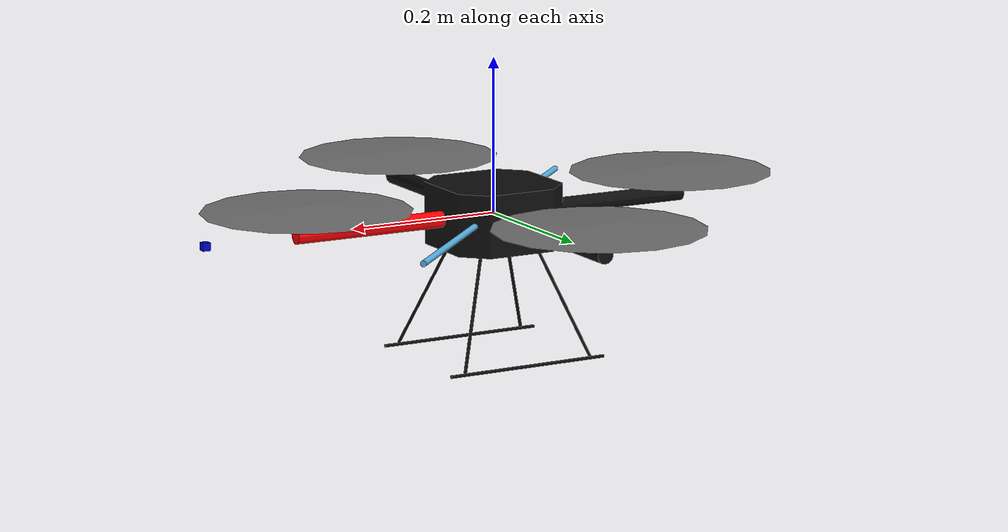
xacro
<?xml version="1.0"?>

<robot
  name="quadrotor"
  xmlns:xacro="http://ros.org/wiki/xacro"
>

    <xacro:property name="M_PI" value="3.1415926535897931" />

    <!-- Included URDF Files -->
    <xacro:include filename="$(find hector_quadrotor_description)/urdf/quadrotor_base.urdf.xacro" />

    <!-- Instantiate quadrotor_base_macro once (has no parameters atm) -->
    <xacro:quadrotor_base_macro />

    <!-- Downward facing camera -->
    <xacro:include filename="$(find hector_sensors_description)/urdf/generic_camera.urdf.xacro" />
    <xacro:generic_camera name="downward_cam" parent="base_link" ros_topic="camera/image" cam_info_topic="camera/camera_info" update_rate="20" res_x="640" res_y="480" image_format="L8" hfov="100">
      <origin xyz="0.4 0.0 -0.0" rpy="0 ${M_PI/2} 0"/>
    </xacro:generic_camera>

</robot>

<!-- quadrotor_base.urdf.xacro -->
<robot xmlns:xacro="http://www.ros.org/wiki/xacro">

  <xacro:include filename="$(find hector_sensors_description)/urdf/sonar_sensor.urdf.xacro" />
  <xacro:property name="pi" value="3.1415926535897931" />

  <!-- Main quadrotor link -->
  <xacro:macro name="quadrotor_base_macro">
    <link name="base_link">
      <inertial>
        <mass value="1.477" />
        <origin xyz="0 0 0" />
        <inertia ixx="0.01152" ixy="0.0" ixz="0.0" iyy="0.01152" iyz="0.0" izz="0.0218" />
      </inertial>

      <visual>
        <origin xyz="0 0 0" rpy="0 0 0" />
        <geometry>
          <mesh filename="package://hector_quadrotor_description/meshes/quadrotor/quadrotor_base.dae"/>
        </geometry>
      </visual>

      <collision>
        <origin xyz="0 0 0" rpy="0 0 0" />
        <geometry>
          <mesh filename="package://hector_quadrotor_description/meshes/quadrotor/quadrotor_base.stl"/>
        </geometry>
      </collision>
    </link>
    <!-- additional link for attaching camera -->
    <link name="add_link">
      <visual>
        <geometry>
          <cylinder length="0.6" radius="0.004"/>
        </geometry>
        <origin rpy="0 1.57075 0.785375" xyz="0 0 0"/>
      </visual>
    </link>

    <joint name="base_to_add_link" type="fixed">
      <parent link="base_link"/>
      <child link="add_link"/>
      <origin xyz="0 0 0"/>
    </joint>

    <!-- Sonar height sensor -->
    <xacro:sonar_sensor name="sonar" parent="base_link" ros_topic="sonar_height" update_rate="10" min_range="0.03" max_range="3.0" field_of_view="${40*pi/180}" ray_count="3">
      <origin xyz="-0.16 0.0 -0.012" rpy="0 ${90*pi/180} 0"/>
    </xacro:sonar_sensor>

  </xacro:macro>
</robot>

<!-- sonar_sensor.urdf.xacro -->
<robot xmlns:sensor="http://playerstage.sourceforge.net/gazebo/xmlschema/#sensor"
xmlns:controller="http://playerstage.sourceforge.net/gazebo/xmlschema/#controller"
xmlns:interface="http://playerstage.sourceforge.net/gazebo/xmlschema/#interface"
xmlns:xacro="http://ros.org/wiki/xacro"
>
  <xacro:macro name="sonar_sensor" params="name parent *origin ros_topic update_rate min_range max_range field_of_view ray_count">
    <joint name="${name}_joint" type="fixed">
      <xacro:insert_block name="origin" />
      <parent link="${parent}"/>
      <child link="${name}_link"/>
    </joint>

    <link name="${name}_link">
      <inertial>
        <mass value="0.001" />
        <origin xyz="0 0 0" rpy="0 0 0" />
        <inertia ixx="0.000000017" ixy="0" ixz="0" iyy="0.000000017" iyz="0" izz="0.000000017" />
      </inertial>
      <visual>
        <origin xyz="0 0 0" rpy="0 0 0" />
        <geometry>
          <box size="0.01 0.01 0.01" />
        </geometry>
        <material name="Red">
          <color rgba="0.8 0.0 0.0 1"/>
        </material>
      </visual>
      <collision>
        <origin xyz="0 0 0" rpy="0 0 0" />
        <geometry>
          <box size="0.01 0.01 0.01" />
        </geometry>
      </collision>
    </link>

    <gazebo reference="${name}_link">
      <sensor:ray name="${name}">

        <rayCount>${ray_count}</rayCount>
        <rangeCount>${ray_count}</rangeCount>
        <verticalRayCount>${ray_count}</verticalRayCount>
        <verticalRangeCount>${ray_count}</verticalRangeCount>

        <minAngle>-${field_of_view/2}</minAngle>
        <verticalMinAngle>-${field_of_view/2}</verticalMinAngle>
        <maxAngle>${field_of_view/2}</maxAngle>
        <verticalMaxAngle>${field_of_view/2}</verticalMaxAngle>

        <minRange>${min_range}</minRange>
        <maxRange>${max_range}</maxRange>
        <resRange>0.01</resRange>

        <updateRate>${update_rate}</updateRate>

        <controller:hector_gazebo_ros_sonar name="gazebo_ros_${name}_controller" plugin="libhector_gazebo_ros_sonar.so">
          <gaussianNoise>0.005</gaussianNoise>
          <alwaysOn>true</alwaysOn>
          <updateRate>${update_rate}</updateRate>
          <topicName>${ros_topic}</topicName>
          <frameName>/${name}_link</frameName>
        </controller:hector_gazebo_ros_sonar>
      </sensor:ray>
    </gazebo>
  </xacro:macro>
</robot>

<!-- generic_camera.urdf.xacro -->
<robot xmlns:sensor="http://playerstage.sourceforge.net/gazebo/xmlschema/#sensor"
xmlns:controller="http://playerstage.sourceforge.net/gazebo/xmlschema/#controller"
xmlns:interface="http://playerstage.sourceforge.net/gazebo/xmlschema/#interface"
  xmlns:xacro="http://ros.org/wiki/xacro"
  >

    <property name="M_PI" value="3.1415926535897931" />

    <xacro:macro name="generic_camera" params="name parent *origin ros_topic cam_info_topic update_rate">
      <joint name="${name}_joint" type="fixed">
        <insert_block name="origin" />
        <parent link="${parent}"/>
        <child link="${name}_link"/>
      </joint>

      <link name="${name}_link">
        <inertial>
          <mass value="0.001" />
          <origin xyz="0 0 0" rpy="0 0 0" />
          <inertia ixx="0.0001" ixy="0" ixz="0" iyy="0.0001" iyz="0" izz="0.0001" />
        </inertial>
        <visual>
          <origin xyz="0 0 0" rpy="0 0 0" />
          <geometry>
            <box size="0.01 0.01 0.01" />
          </geometry>
	  <material name="Blue">
      <color rgba="0.0 0.0 0.8 1"/>
    </material>
        </visual>
        <collision>
          <origin xyz="0 0 0" rpy="0 0 0" />
          <geometry>
            <box size="0.01 0.01 0.01" />
          </geometry>
        </collision>
      </link>

    <joint name="${name}_optical_joint" type="fixed">
      <origin xyz="0 0 0" rpy="${-M_PI/2} 0.0 ${-M_PI/2}" />
      <parent link="${name}_link" />
      <child link="${name}_optical_frame"/>
    </joint>

    <link name="${name}_optical_frame">
      <inertial>
        <mass value="0.01" />
        <origin xyz="0 0 0" />
        <inertia ixx="0.001"  ixy="0.0"  ixz="0.0"
                 iyy="0.001"  iyz="0.0"
                 izz="0.001" />
      </inertial>
      <visual>
        <origin xyz="0 0 0" rpy="0 0 0"/>
        <geometry>
          <box size="0.001 0.001 0.001" />
        </geometry>
      </visual>
      <collision>
        <origin xyz="0 0 0" rpy="0 0 0"/>
        <geometry>
          <box size="0.001 0.001 0.001" />
        </geometry>
      </collision>
    </link>

    <gazebo reference="${name}_link">
      <sensor:camera name="${name}_camera_sensor">
        <imageSize>320 240</imageSize>
        <imageFormat>R8G8B8</imageFormat>
        <hfov>90</hfov>
        <nearClip>0.01</nearClip>
        <farClip>100</farClip>
        <updateRate>${update_rate}</updateRate>
        <controller:gazebo_ros_camera name="${name}_camera_controller" plugin="libgazebo_ros_camera.so">
          <alwaysOn>true</alwaysOn>
          <updateRate>${update_rate}</updateRate>
          <imageTopicName>${ros_topic}</imageTopicName>
          <cameraInfoTopicName>${cam_info_topic}</cameraInfoTopicName>
          <frameName>${name}_optical_frame</frameName>
          <interface:camera name="${name}_camera_iface" />
        </controller:gazebo_ros_camera>
      </sensor:camera>
      <turnGravityOff>true</turnGravityOff>
      <material>PR2/Blue</material>
    </gazebo>
    </xacro:macro>
  </robot>
